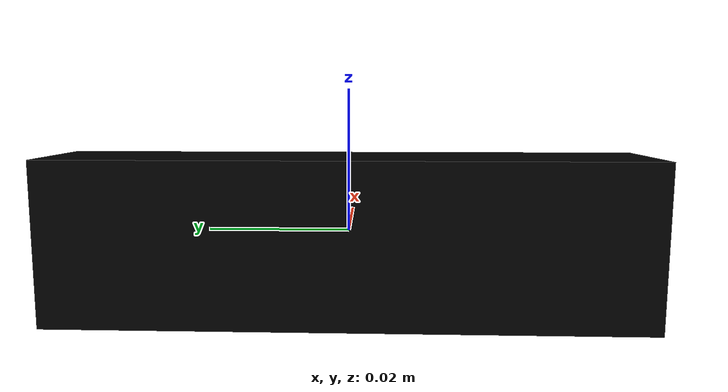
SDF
<?xml version='1.0'?>
<sdf version='1.7'>
    <model name="camera">

        <!-- *********************** DEPTH CAMERA ******************************  -->
        <!-- The depth camera (e.g. Intel Realsense camera). -->
        <link name="camera_depth_frame">
        <pose>0 0 0 0 0 0</pose>
        </link>

        <link name="camera_link">
        <pose>0 0 0 0 0 0</pose>

        <visual name="camera_visual">
            <pose>-0.005 0 0 0 0 0</pose>
            <geometry>
            <box>
                <size>0.015 0.08 0.022</size>
            </box>
            </geometry>
            <material>
            <ambient>0 0 0 1.0</ambient>
            <diffuse>0 0 0 1.0</diffuse>
            <specular>0.0 0.0 0.0 1.0</specular>
            <emissive>0.0 0.0 0.0 1.0</emissive>
            </material>
        </visual>

        <sensor name="depth_camera" type="camera">
            <always_on>true</always_on>
            <visualize>false</visualize>
            <update_rate>5</update_rate>
            <camera name="camera">
            <horizontal_fov>1.02974</horizontal_fov>
            <image>
                <width>640</width>
                <height>480</height>
                <format>R8G8B8</format>
            </image>
            <clip>
                <near>0.02</near>
                <far>10</far>
            </clip>
            <noise>
                <type>gaussian</type>
                <mean>0.0</mean>
                <stddev>0.007</stddev>
            </noise>
            </camera>
           <plugin name="depth_camera_controller" filename="libgazebo_ros_camera.so">
            <camera_name>depth_camera</camera_name>
            <frame_name>camera_depth_frame</frame_name>
            <hack_baseline>0</hack_baseline>
            <min_depth>0.001</min_depth>
            </plugin>
        </sensor>
        </link>
  </model>
</sdf>
